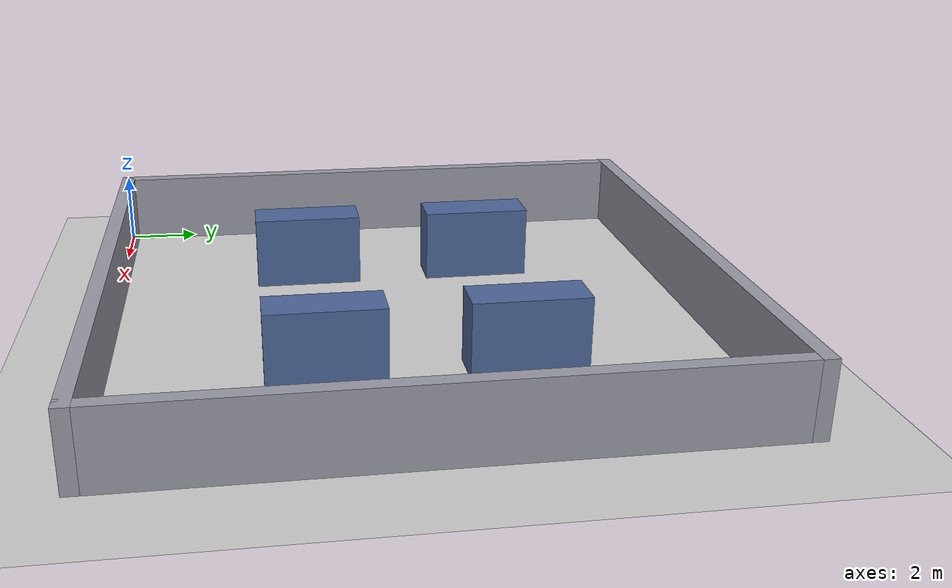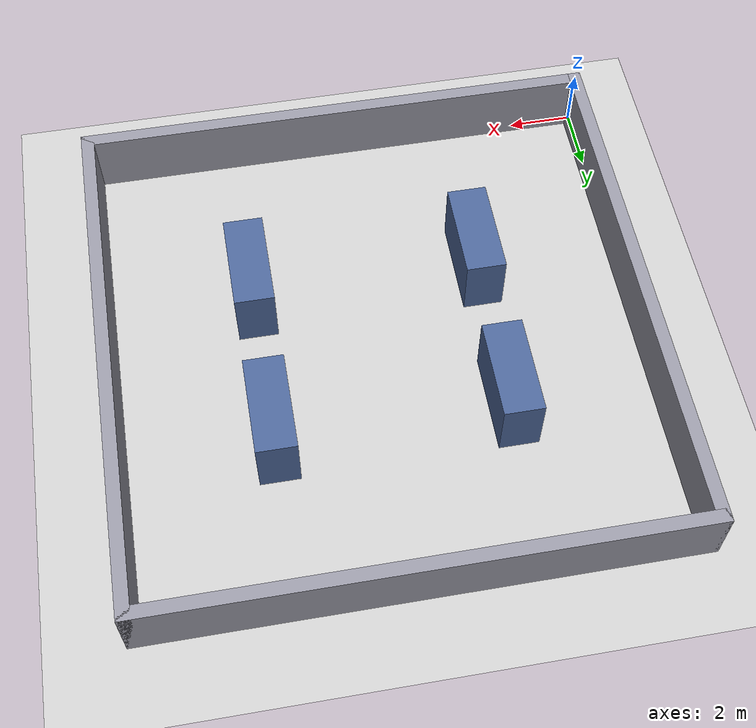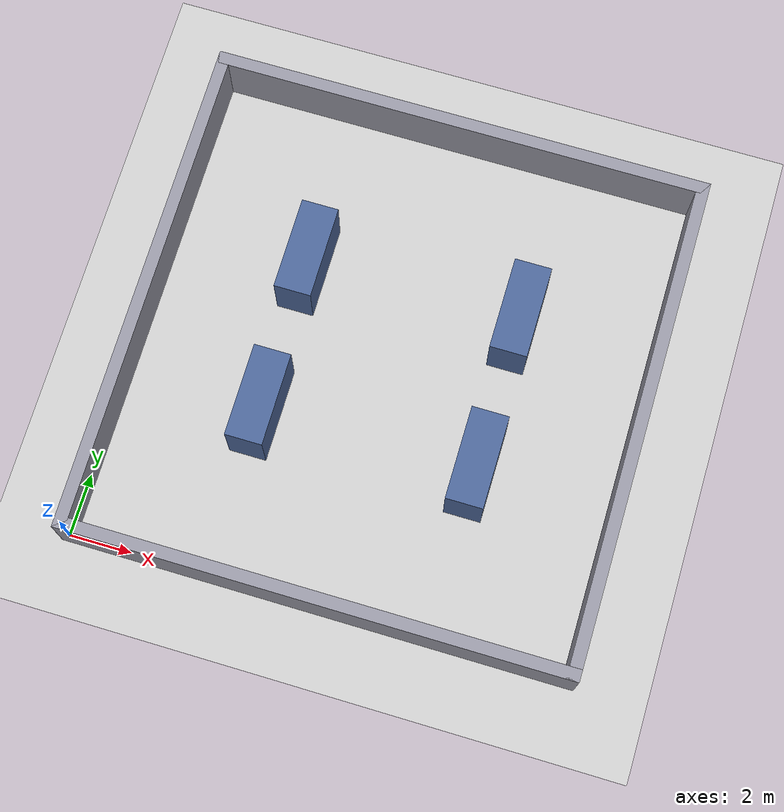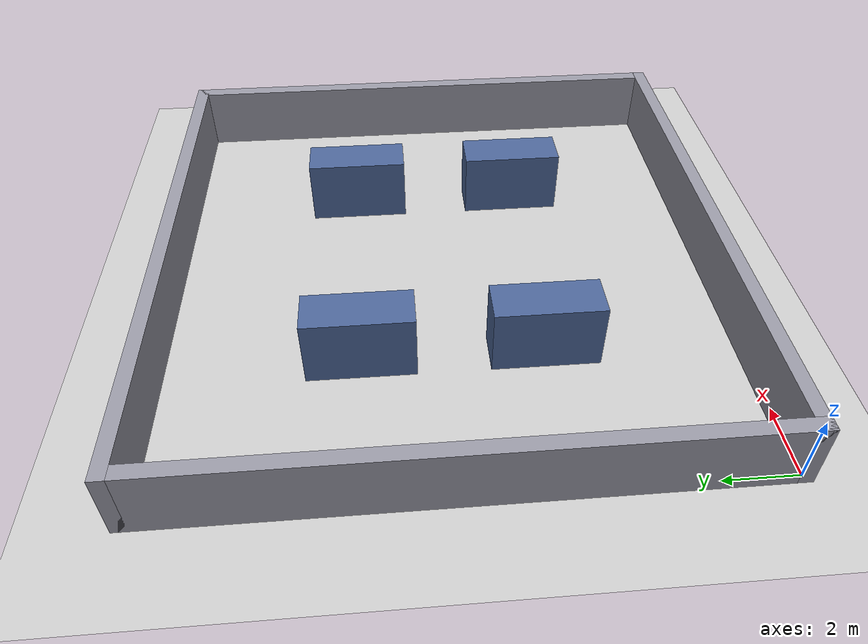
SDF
<?xml version="1.0" ?>
<sdf version="1.8">
  <world name="warehouse_small">

    <!-- Physics Configuration -->
    <physics name="default_physics" type="dart">
      <max_step_size>0.005</max_step_size>
      <real_time_factor>1.0</real_time_factor>
    </physics>

    <!-- Essential System Plugins for Gazebo Harmonic -->
    <plugin filename="gz-sim-physics-system" name="gz::sim::systems::Physics"/>
    <plugin filename="gz-sim-user-commands-system" name="gz::sim::systems::UserCommands"/>
    <plugin filename="gz-sim-scene-broadcaster-system" name="gz::sim::systems::SceneBroadcaster"/>
    <plugin filename="gz-sim-sensors-system" name="gz::sim::systems::Sensors">
      <render_engine>ogre2</render_engine>
    </plugin>

    <!-- Sun / Ambient Light -->
    <light type="directional" name="sun">
      <cast_shadows>true</cast_shadows>
      <pose>0 0 10 0 0 0</pose>
      <diffuse>0.8 0.8 0.8 1</diffuse>
      <specular>0.2 0.2 0.2 1</specular>
      <direction>-0.5 0.1 -0.9</direction>
    </light>

    <!-- Ground Plane (16m x 16m floor) -->
    <model name="ground_plane">
      <static>true</static>
      <link name="floor_link">
        <collision name="collision">
          <geometry>
            <plane>
              <normal>0 0 1</normal>
              <size>20 20</size>
            </plane>
          </geometry>
          <surface>
            <friction>
              <ode>
                <mu>100</mu>
                <mu2>50</mu2>
              </ode>
            </friction>
          </surface>
        </collision>
        <visual name="visual">
          <geometry>
            <plane>
              <normal>0 0 1</normal>
              <size>20 20</size>
            </plane>
          </geometry>
          <material>
            <ambient>0.8 0.8 0.8 1</ambient>
            <diffuse>0.8 0.8 0.8 1</diffuse>
            <specular>0.8 0.8 0.8 1</specular>
          </material>
        </visual>
      </link>
    </model>

    <!-- Warehouse Boundary Walls (16m x 16m interior, centered at 8, 8) -->
    <!-- North Wall -->
    <model name="wall_north">
      <static>true</static>
      <pose>8 16 1.0 0 0 0</pose>
      <link name="link">
        <collision name="col"><geometry><box><size>16.4 0.4 2.0</size></box></geometry></collision>
        <visual name="vis">
          <geometry><box><size>16.4 0.4 2.0</size></box></geometry>
          <material><ambient>0.6 0.6 0.65 1</ambient><diffuse>0.6 0.6 0.65 1</diffuse></material>
        </visual>
      </link>
    </model>

    <!-- South Wall -->
    <model name="wall_south">
      <static>true</static>
      <pose>8 0 1.0 0 0 0</pose>
      <link name="link">
        <collision name="col"><geometry><box><size>16.4 0.4 2.0</size></box></geometry></collision>
        <visual name="vis">
          <geometry><box><size>16.4 0.4 2.0</size></box></geometry>
          <material><ambient>0.6 0.6 0.65 1</ambient><diffuse>0.6 0.6 0.65 1</diffuse></material>
        </visual>
      </link>
    </model>

    <!-- East Wall -->
    <model name="wall_east">
      <static>true</static>
      <pose>16 8 1.0 0 0 0</pose>
      <link name="link">
        <collision name="col"><geometry><box><size>0.4 16.4 2.0</size></box></geometry></collision>
        <visual name="vis">
          <geometry><box><size>0.4 16.4 2.0</size></box></geometry>
          <material><ambient>0.6 0.6 0.65 1</ambient><diffuse>0.6 0.6 0.65 1</diffuse></material>
        </visual>
      </link>
    </model>

    <!-- West Wall -->
    <model name="wall_west">
      <static>true</static>
      <pose>0 8 1.0 0 0 0</pose>
      <link name="link">
        <collision name="col"><geometry><box><size>0.4 16.4 2.0</size></box></geometry></collision>
        <visual name="vis">
          <geometry><box><size>0.4 16.4 2.0</size></box></geometry>
          <material><ambient>0.6 0.6 0.65 1</ambient><diffuse>0.6 0.6 0.65 1</diffuse></material>
        </visual>
      </link>
    </model>

    <!-- Warehouse Storage Racks (Obstacles matching config/maps/warehouse_grid_small.yaml) -->
    <model name="rack_1">
      <static>true</static>
      <pose>4.5 5.5 1.0 0 0 0</pose>
      <link name="link">
        <collision name="col"><geometry><box><size>1.2 3.0 2.0</size></box></geometry></collision>
        <visual name="vis">
          <geometry><box><size>1.2 3.0 2.0</size></box></geometry>
          <material><ambient>0.3 0.4 0.6 1</ambient><diffuse>0.3 0.4 0.6 1</diffuse></material>
        </visual>
      </link>
    </model>

    <model name="rack_2">
      <static>true</static>
      <pose>4.5 10.5 1.0 0 0 0</pose>
      <link name="link">
        <collision name="col"><geometry><box><size>1.2 3.0 2.0</size></box></geometry></collision>
        <visual name="vis">
          <geometry><box><size>1.2 3.0 2.0</size></box></geometry>
          <material><ambient>0.3 0.4 0.6 1</ambient><diffuse>0.3 0.4 0.6 1</diffuse></material>
        </visual>
      </link>
    </model>

    <model name="rack_3">
      <static>true</static>
      <pose>11.5 5.5 1.0 0 0 0</pose>
      <link name="link">
        <collision name="col"><geometry><box><size>1.2 3.0 2.0</size></box></geometry></collision>
        <visual name="vis">
          <geometry><box><size>1.2 3.0 2.0</size></box></geometry>
          <material><ambient>0.3 0.4 0.6 1</ambient><diffuse>0.3 0.4 0.6 1</diffuse></material>
        </visual>
      </link>
    </model>

    <model name="rack_4">
      <static>true</static>
      <pose>11.5 10.5 1.0 0 0 0</pose>
      <link name="link">
        <collision name="col"><geometry><box><size>1.2 3.0 2.0</size></box></geometry></collision>
        <visual name="vis">
          <geometry><box><size>1.2 3.0 2.0</size></box></geometry>
          <material><ambient>0.3 0.4 0.6 1</ambient><diffuse>0.3 0.4 0.6 1</diffuse></material>
        </visual>
      </link>
    </model>

  </world>
</sdf>
